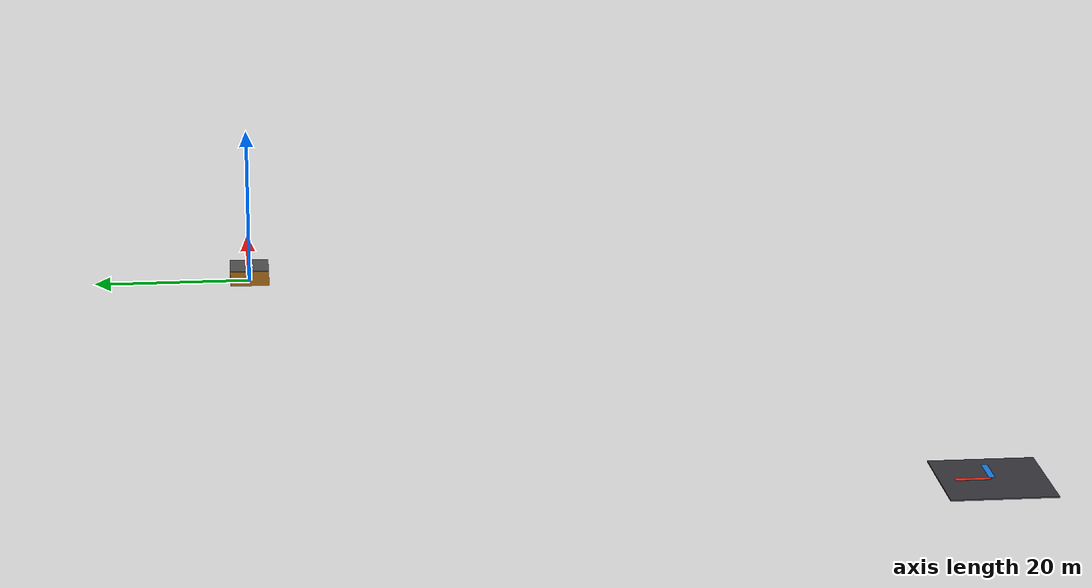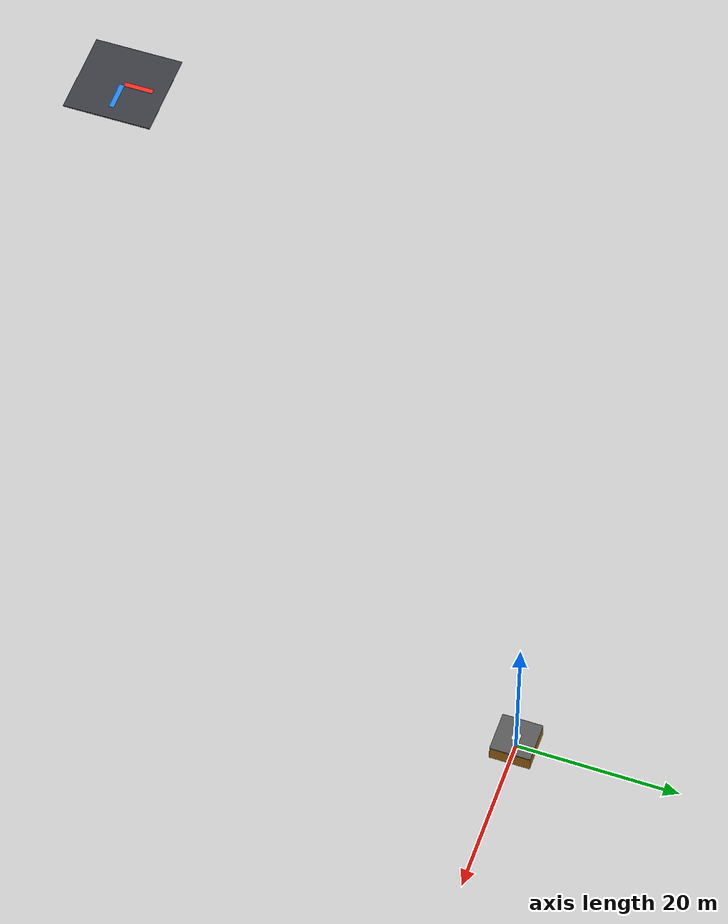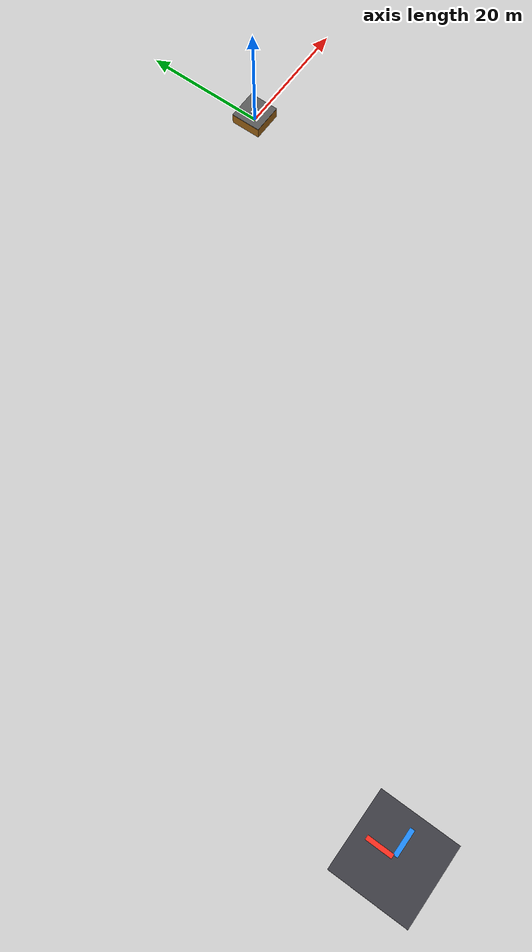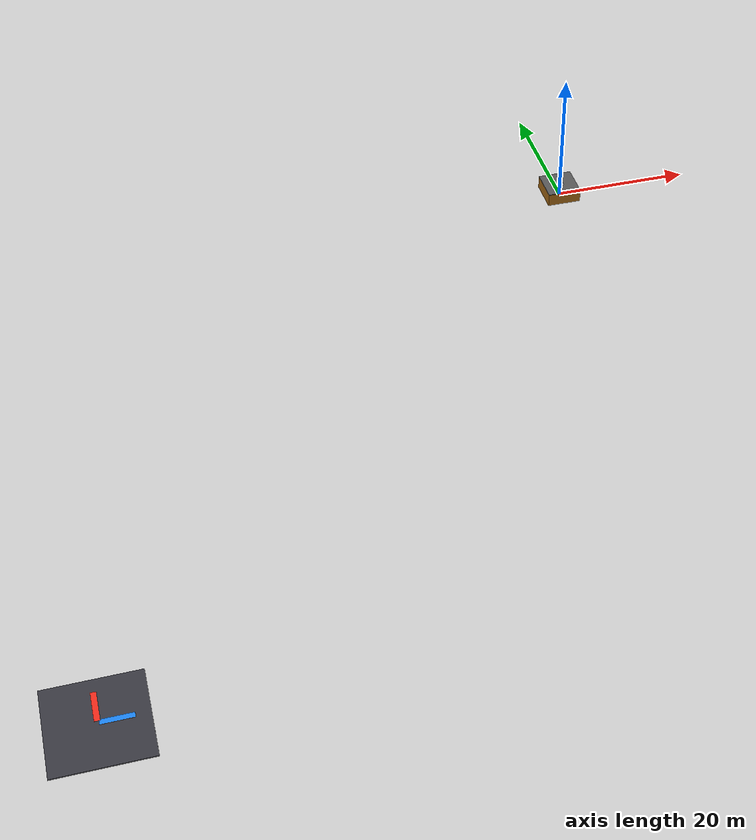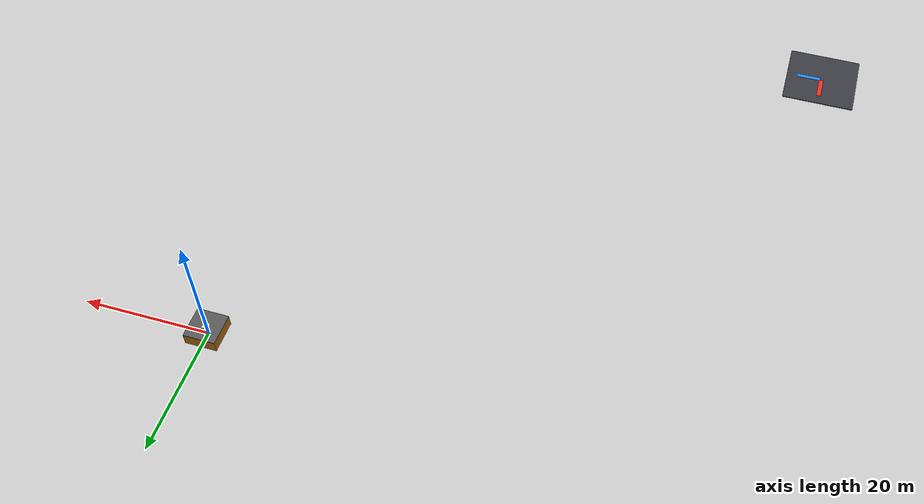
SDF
<sdf version="1.9">
 <world name="ugv_drone_mountain_map">
  <gravity>0 0 -9.8</gravity>
  <magnetic_field>6.0e-6 2.3e-5 -4.2e-5</magnetic_field>
  <atmosphere type="adiabatic"/>
  <physics name="2ms" type="ignored">
   <max_step_size>0.002</max_step_size>
   <real_time_factor>1.0</real_time_factor>
   <real_time_update_rate>500</real_time_update_rate>
  </physics>
  <plugin filename="gz-sim-physics-system" name="gz::sim::systems::Physics"/>
  <plugin filename="gz-sim-sensors-system" name="gz::sim::systems::Sensors">
   <render_engine>ogre2</render_engine>
  </plugin>
  <plugin filename="gz-sim-user-commands-system" name="gz::sim::systems::UserCommands"/>
  <plugin filename="gz-sim-scene-broadcaster-system" name="gz::sim::systems::SceneBroadcaster"/>
  <plugin filename="gz-sim-contact-system" name="gz::sim::systems::Contact"/>
  <plugin filename="gz-sim-imu-system" name="gz::sim::systems::Imu"/>
  <plugin filename="gz-sim-air-pressure-system" name="gz::sim::systems::AirPressure"/>
  <plugin filename="gz-sim-magnetometer-system" name="gz::sim::systems::Magnetometer"/>
  <plugin filename="gz-sim-navsat-system" name="gz::sim::systems::NavSat"/>
  <spherical_coordinates>
   <surface_model>EARTH_WGS84</surface_model>
   <world_frame_orientation>ENU</world_frame_orientation>
   <latitude_deg>37.6189</latitude_deg>
   <longitude_deg>-122.3750</longitude_deg>
   <elevation>0</elevation>
   <heading_deg>0</heading_deg>
  </spherical_coordinates>
  <scene>
   <ambient>0.53 0.53 0.50 1</ambient>
   <background>0.42 0.42 0.42 1</background>
   <shadows>true</shadows>
  </scene>
  <light name="mountain_sun" type="directional">
   <pose>-70 -80 120 0 0 0</pose>
   <diffuse>0.96 0.91 0.78 1</diffuse>
   <specular>0.22 0.20 0.18 1</specular>
   <attenuation>
    <range>1000</range>
    <constant>0.9</constant>
    <linear>0.01</linear>
    <quadratic>0.001</quadratic>
   </attenuation>
   <direction>-0.45 0.22 -0.86</direction>
  </light>
  <include><uri>model://moving_platform_track</uri><name>flat_platform</name></include>
  <model name="drone_launch_pad">
   <static>true</static>
   <pose>-80 -80 0.08 0 0 0</pose>
   <link name="pad_link">
    <collision name="pad_collision"><geometry><box><size>12 12 0.16</size></box></geometry></collision>
    <visual name="pad_visual">
     <geometry><box><size>12 12 0.16</size></box></geometry>
     <material>
      <ambient>0.18 0.18 0.20 1</ambient>
      <diffuse>0.24 0.24 0.27 1</diffuse>
      <specular>0.04 0.04 0.04 1</specular>
     </material>
    </visual>
    <visual name="north_marker">
     <pose>0 2.2 0.085 0 0 0</pose>
     <geometry><box><size>0.7 4.0 0.02</size></box></geometry>
     <material><ambient>0.9 0.15 0.10 1</ambient><diffuse>1.0 0.18 0.12 1</diffuse></material>
    </visual>
    <visual name="east_marker">
     <pose>2.2 0 0.085 0 0 0</pose>
     <geometry><box><size>4.0 0.7 0.02</size></box></geometry>
     <material><ambient>0.1 0.45 0.9 1</ambient><diffuse>0.12 0.55 1.0 1</diffuse></material>
    </visual>
   </link>
  </model>
 </world>
</sdf>

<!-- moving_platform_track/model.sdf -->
<sdf version="1.9">
  <model name="flat_platform">
    <link name="platform_link">
      <visual name="body_visual">
        <pose>0 0 -1 0 0 0</pose>
        <geometry><box><size>5 5 1.9</size></box></geometry>
        <material>
          <ambient>0.55 0.32 0.05 1</ambient>
          <diffuse>0.60 0.38 0.08 1</diffuse>
          <specular>0.20 0.20 0.20 1</specular>
        </material>
      </visual>
      <collision name="body_collision">
        <pose>0 0 -1 0 0 0</pose>
        <geometry><box><size>5 5 1.9</size></box></geometry>
        <surface>
          <friction><ode><mu>0.8</mu><mu2>0.8</mu2></ode></friction>
          <contact><ode><kp>100000</kp><kd>10</kd><max_vel>0.1</max_vel></ode></contact>
        </surface>
      </collision>

      <visual name="platform_visual">
        <geometry><box><size>5 5 0.1</size></box></geometry>
        <material>
          <ambient>0.30 0.30 0.30 1</ambient>
          <diffuse>0.36 0.36 0.36 1</diffuse>
          <specular>0.10 0.10 0.10 1</specular>
        </material>
      </visual>
      <collision name="platform_collision">
        <geometry><box><size>5 5 0.1</size></box></geometry>
      </collision>
      <visual name="aruco_visual">
        <pose>0 0 0.051 0 0 0</pose>
        <geometry><plane><normal>0 0 1</normal><size>1 1</size></plane></geometry>
        <material>
          <ambient>1 1 1 1</ambient><diffuse>1 1 1 1</diffuse>
          <specular>0 0 0 1</specular>
          <pbr><metal>
            <albedo_map>model://aruco_marker_0/materials/textures/aruco_0.png</albedo_map>
            <metalness>0.0</metalness><roughness>1.0</roughness>
          </metal></pbr>
        </material>
      </visual>

      <!-- seo keeps the link origin 2 m above the body bottom convention. -->
      <pose>0 0 2 0 0 0</pose>
      <inertial>
        <mass>10000</mass>
        <inertia>
          <ixx>10000</ixx><iyy>10000</iyy><izz>10000</izz>
          <ixy>0</ixy><ixz>0</ixz><iyz>0</iyz>
        </inertia>
      </inertial>
      <sensor name="navsat_sensor" type="navsat">
        <always_on>1</always_on><update_rate>30</update_rate>
      </sensor>
    </link>
    <plugin filename="gz-sim-velocity-control-system"
            name="gz::sim::systems::VelocityControl">
      <topic>/model/flat_platform/cmd_vel</topic>
    </plugin>
  </model>
</sdf>
